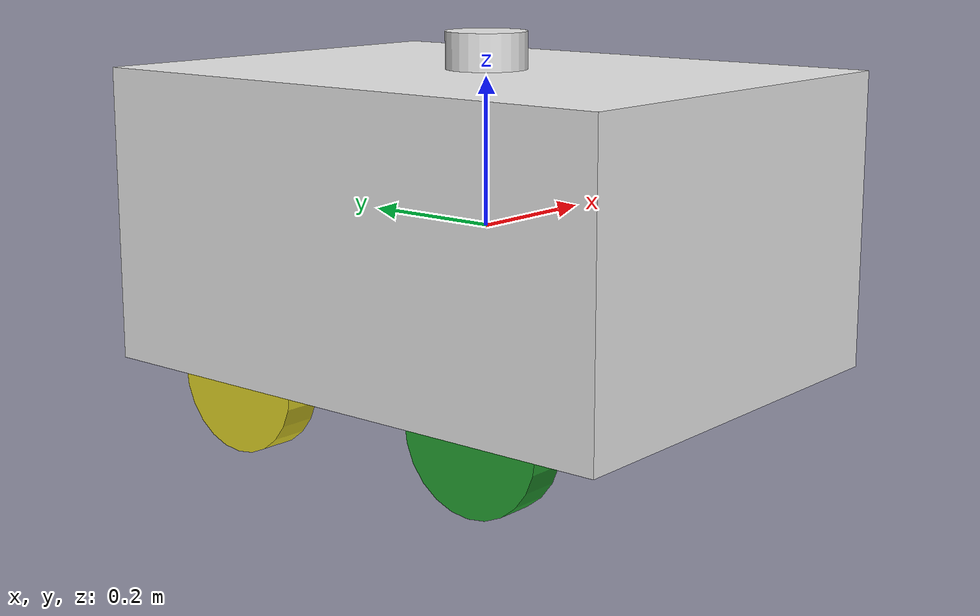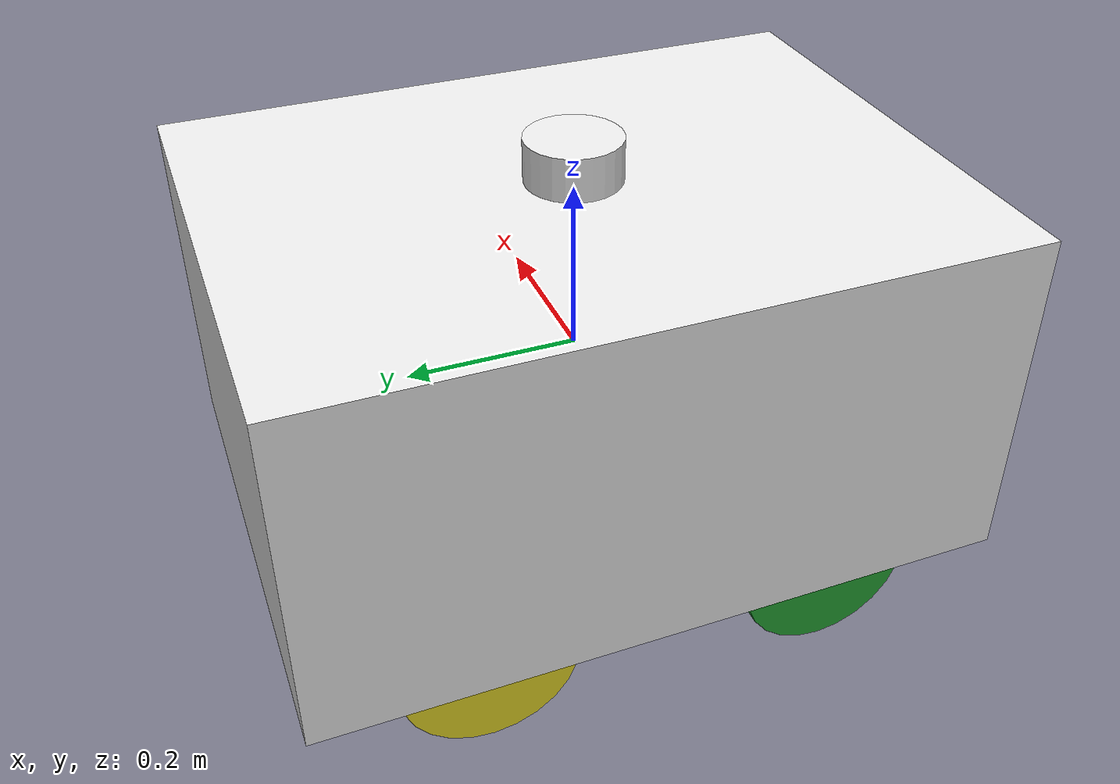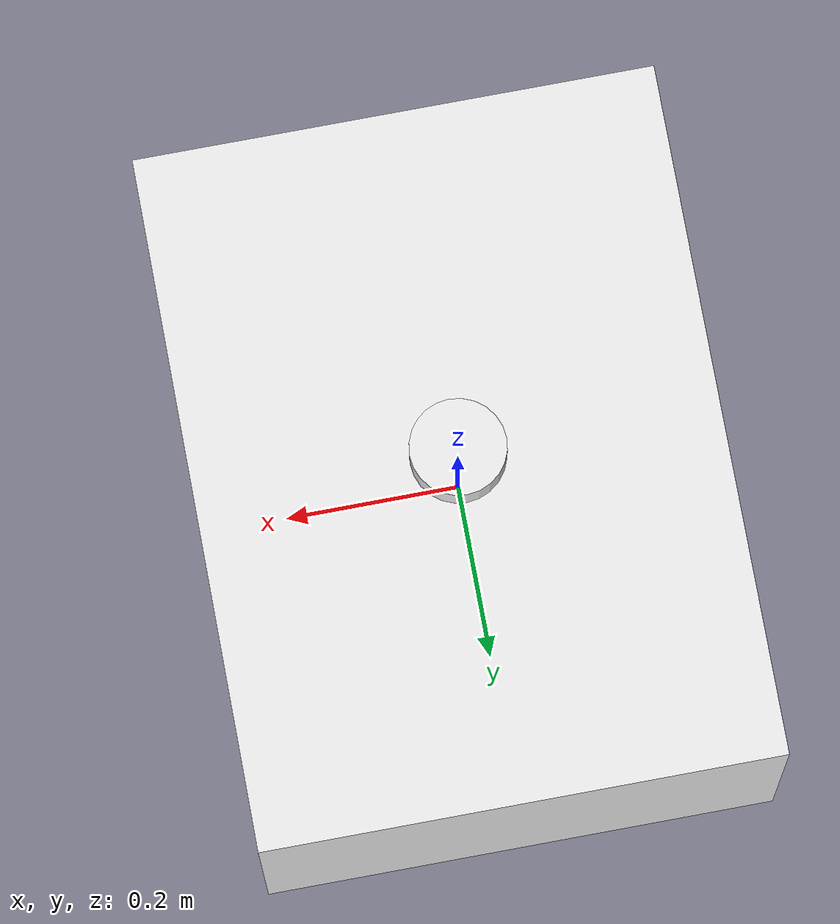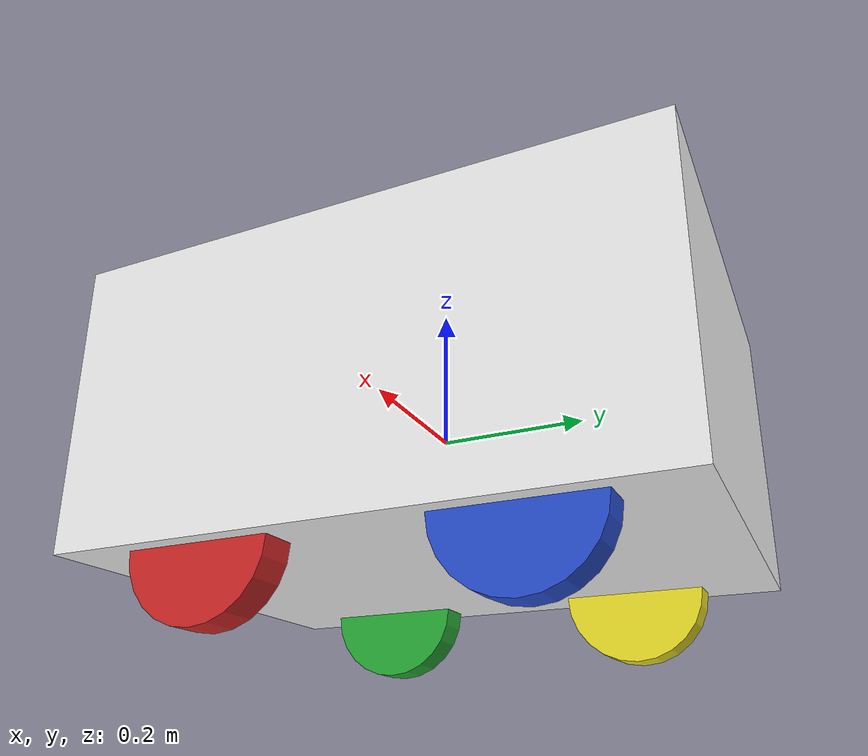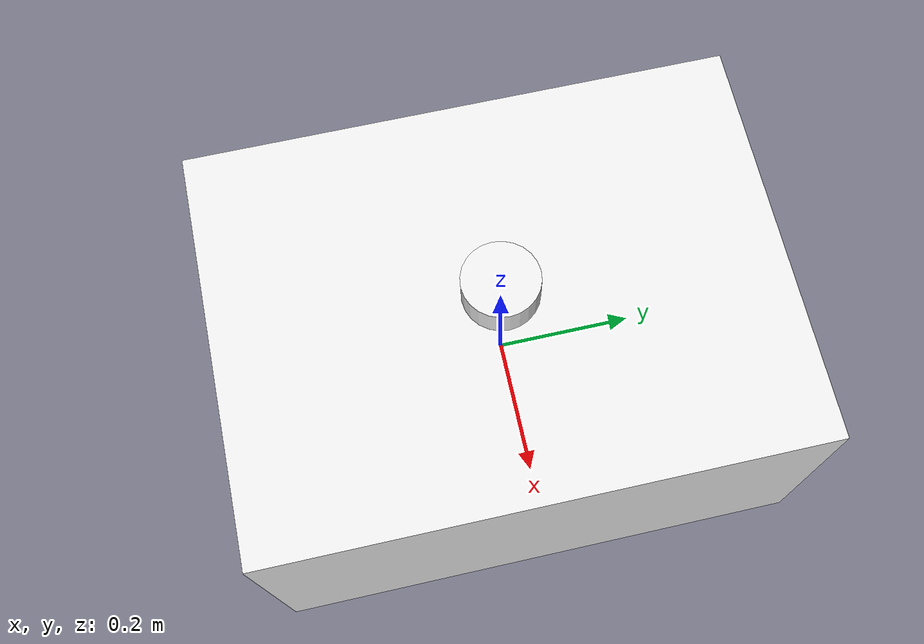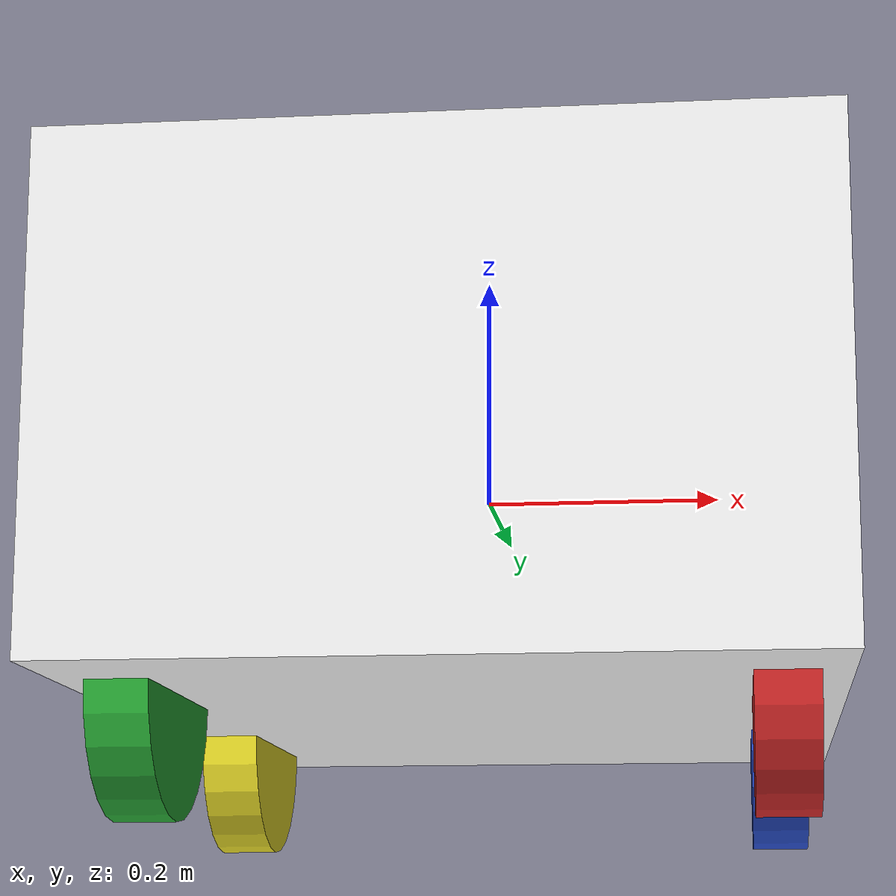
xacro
<?xml version="1.0" ?>
<robot name="gwonbot" xmlns:xacro="https://www.ros.org/wiki/xacro" >

    <xacro:include filename="$(find gwonbot_description)/urdf/gwonbot_.gazebo.xacro"/>

    <xacro:property name="chassis_x" value="0.8" />
    <xacro:property name="chassis_y" value="0.6" />
    <xacro:property name="chassis_z" value="0.6" />

    <xacro:property name="wheel" value="0.05" />
    <xacro:property name="wheel_radius" value="0.1" />

    <material name="blue">
        <color rgba="0 0 0.8 1"/>
    </material>

    <material name="black">
        <color rgba="0 0 0 1"/>
    </material>

    <material name="white">
        <color rgba="1 1 1 1"/>
    </material>

  <link name="base_footprint"/>

  <joint name="base_joint" type="fixed">
    <parent link="base_footprint"/>
    <child link="base_link" />
    <origin xyz="0 0 0.010" rpy="0 0 0"/>
  </joint>

  <link name="base_link">
    <visual>
      <origin xyz="0 0 0" rpy="0 0 0"/>
      <geometry>
        <box size="0.6 0.8 0.4"/>
      </geometry>
    </visual>

    <collision>
      <origin xyz="0 0 0" rpy="0 0 0"/>
      <geometry>
        <box size="0.6 0.8 0.4"/>
      </geometry>
    </collision>

    <inertial>
      <origin xyz="0 0 0" />
      <mass value="0.005" />
      <inertia ixx="0.001" ixy="0.0" ixz="0.0"
               iyy="0.001" iyz="0.0"
               izz="0.001" />
    </inertial>
  </link>

  <joint name="wheel_left_joint" type="continuous">
    <parent link="base_link"/>
    <child link="wheel_left_link"/>
    <origin xyz="0.25 -0.2 -0.2" rpy="0 1.57 0"/>
    <axis xyz="0 0 1"/>
  </joint>

  <link name="wheel_left_link">
    <visual>
      <origin xyz="0 0 0" rpy="0 0 0"/>
      <geometry>
        <cylinder length="0.05" radius="0.1"/>
      </geometry>
      <material name="dark"/>
    </visual>

    <collision>
      <origin xyz="0 0 0" rpy="0 0 0"/>
      <geometry>
        <cylinder length="0.05" radius="0.1"/>
      </geometry>
    </collision>

    <inertial>
      <origin xyz="0 0 0" />
      <mass value="2.8498940e-02" />
      <inertia ixx="1.1175580e-05" ixy="-4.2369783e-11" ixz="-5.9381719e-09"
               iyy="1.1192413e-05" iyz="-1.4400107e-11"
               izz="2.0712558e-05" />
    </inertial>
  </link>

  <joint name="wheel_right_joint" type="continuous">
    <parent link="base_link"/>
    <child link="wheel_right_link"/>
    <origin xyz="-0.25 -0.2 -0.2" rpy="0 1.57 0"/>
    <axis xyz="0 0 1"/>
  </joint>

  <link name="wheel_right_link">
    <visual>
      <origin xyz="0 0 0" rpy="0 0 0"/>
      <geometry>
        <cylinder length="0.05" radius="0.1"/>
      </geometry>
      <material name="dark"/>
    </visual>

    <collision>
      <origin xyz="0 0 0" rpy="0 0 0"/>
      <geometry>
        <cylinder length="0.05" radius="0.1"/>
      </geometry>
    </collision>

    <inertial>
      <origin xyz="0 0 0" />
      <mass value="2.8498940e-02" />
      <inertia ixx="1.1175580e-05" ixy="-4.2369783e-11" ixz="-5.9381719e-09"
               iyy="1.1192413e-05" iyz="-1.4400107e-11"
               izz="2.0712558e-05" />
    </inertial>
  </link>

  <joint name="caster_back_left_joint" type="fixed">
    <parent link="base_link"/>
    <child link="caster_back_left_link"/>
    <origin xyz="0.25 0.2 -0.2" rpy="0 1.57 0"/>
  </joint>

  <link name="caster_back_left_link">
    <visual>
      <origin xyz="0 0 0" rpy="0 0 0"/>
      <geometry>
        <cylinder length="0.05" radius="0.1"/>
      </geometry>
      <material name="dark"/>
    </visual>

    <collision>
      <origin xyz="0 0 0" rpy="0 0 0"/>
      <geometry>
        <cylinder length="0.05" radius="0.1"/>
      </geometry>
    </collision>
  </link>

  <joint name="caster_back_right_joint" type="fixed">
    <parent link="base_link"/>
    <child link="caster_back_right_link"/>
    <origin xyz="-0.25 0.2 -0.2" rpy="0 1.57 0"/>
  </joint>

  <link name="caster_back_right_link">
    <visual>
      <origin xyz="0 0 0" rpy="0 0 0"/>
      <geometry>
        <cylinder length="0.05" radius="0.1"/>
      </geometry>
      <material name="dark"/>
    </visual>

    <collision>
      <origin xyz="0 0 0" rpy="0 0 0"/>
      <geometry>
        <cylinder length="0.05" radius="0.1"/>
      </geometry>
    </collision>
  </link>

  <joint name="scan_joint" type="fixed">
    <parent link="base_link"/>
    <child link="base_scan"/>
    <origin xyz="0.0 0.0 0.225" rpy="0 0 0"/>
  </joint>

  <link name="base_scan">
    <visual>
      <origin xyz="0 0 0" rpy="0 0 0"/>
      <geometry>
        <cylinder length="0.05" radius="0.055"/>
      </geometry>
      <material name="dark"/>
    </visual>

    <collision>
      <origin xyz="0.0 0 0.0" rpy="0 0 0"/>
      <geometry>
        <cylinder length="0.1" radius="0.055"/>
      </geometry>
    </collision>
  </link>
</robot>
